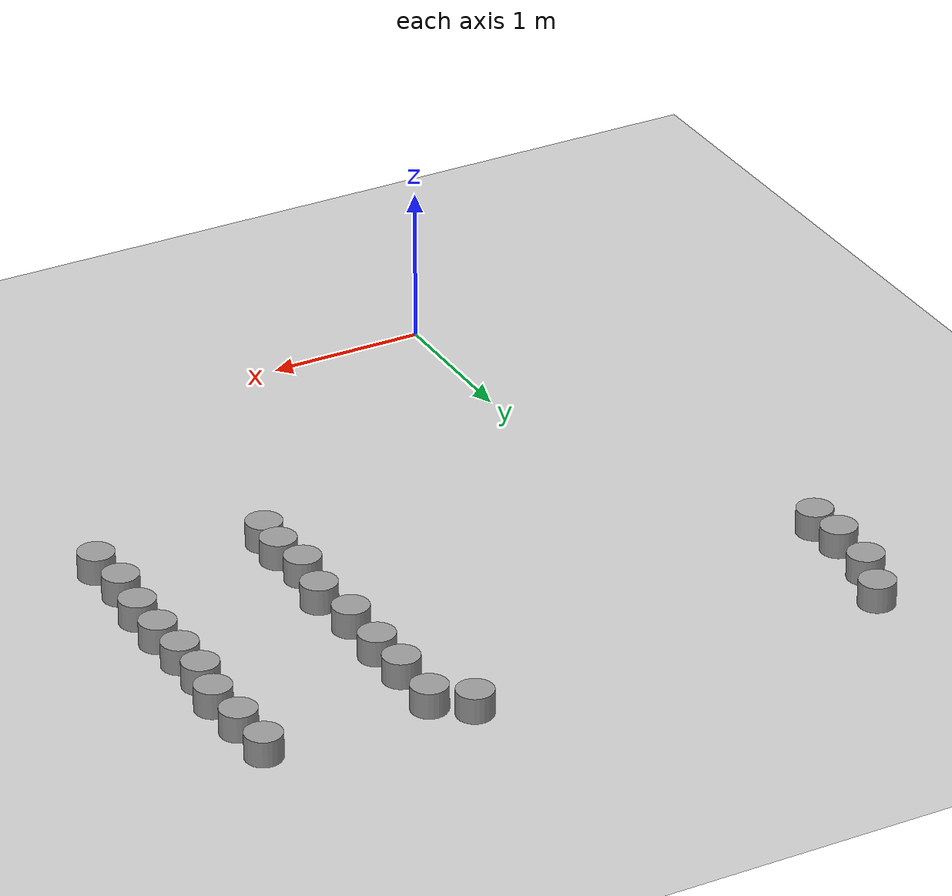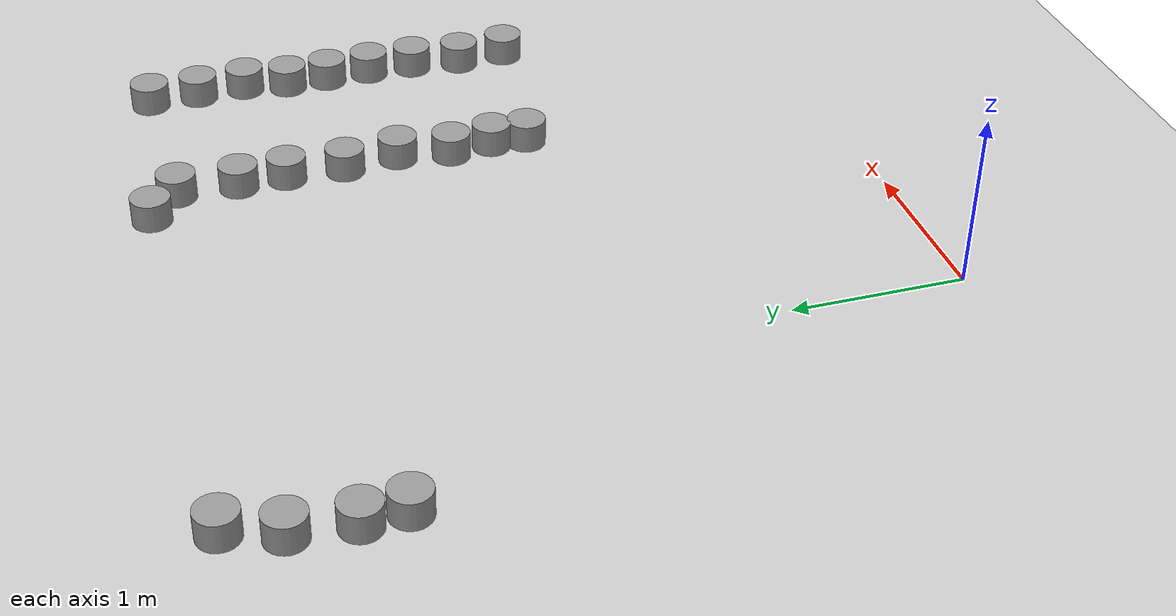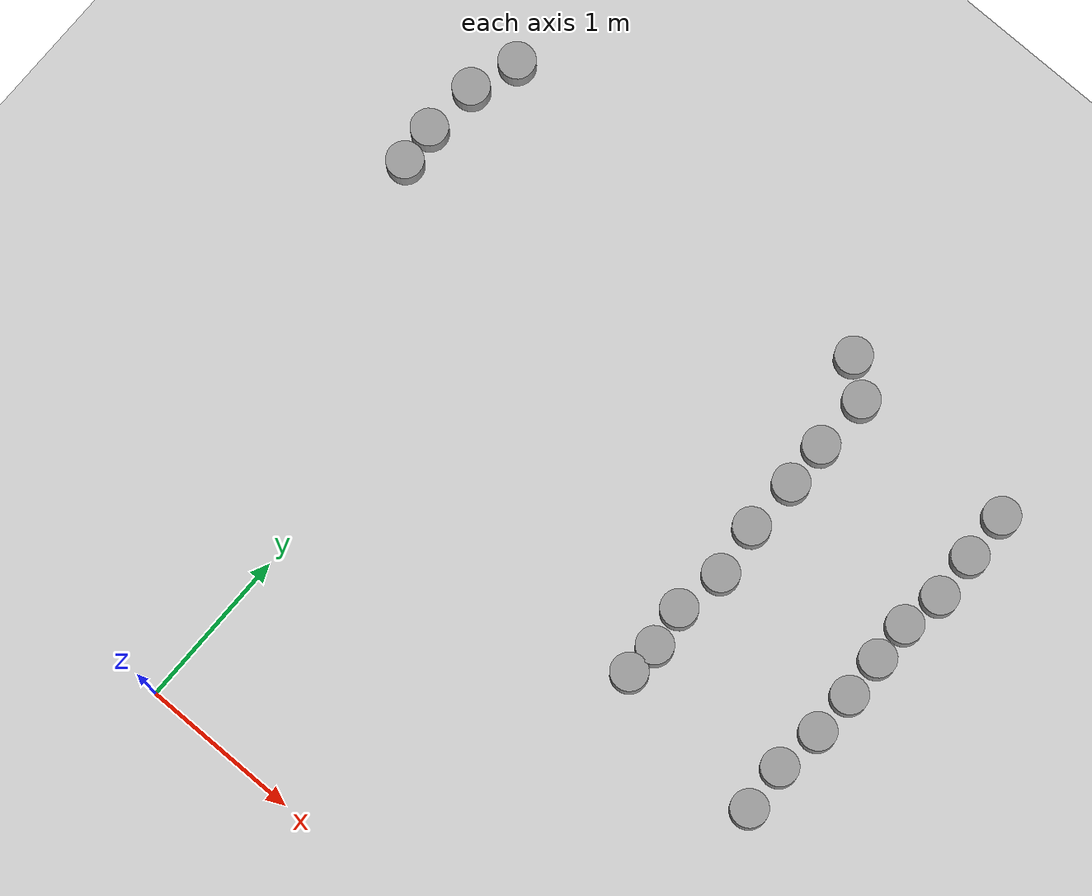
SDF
<sdf version="1.6">
 <world name="default">
  <model name="ground_plane">
   <static>1</static>
   <link name="link">
    <collision name="collision">
     <geometry><plane><normal>0 0 1</normal><size>100 100</size></plane></geometry>
     <surface>
      <contact><collide_bitmask>65535</collide_bitmask></contact>
      <friction><ode><mu>100</mu><mu2>50</mu2></ode></friction>
     </surface>
    </collision>
    <visual name="visual">
     <cast_shadows>0</cast_shadows>
     <geometry><plane><normal>0 0 1</normal><size>100 100</size></plane></geometry>
     <material>
      <script><uri>file://media/materials/scripts/gazebo.material</uri><name>Gazebo/Grey</name></script>
     </material>
    </visual>
   </link>
  </model>
  <model name="pillar_clone_16">
   <link name="link_0">
    <inertial>
     <mass>0.0172437</mass>
     <inertia>
      <ixx>0.000207925</ixx>
      <ixy>0</ixy>
      <ixz>0</ixz>
      <iyy>0.000207925</iyy>
      <iyz>0</iyz>
      <izz>0.000114861</izz>
     </inertia>
    </inertial>
    <pose>2e-06 -0 0 0 -0 0</pose>
    <visual name="visual">
     <geometry><cylinder><radius>0.115422</radius><length>0.32362</length></cylinder></geometry>
     <material>
      <lighting>1</lighting>
      <script><uri>file://media/materials/scripts/gazebo.material</uri><name>Gazebo/Grey</name></script>
      <shader type="vertex"><normal_map>__default__</normal_map></shader>
     </material>
    </visual>
    <collision name="collision">
     <geometry><cylinder><radius>0.115422</radius><length>0.32362</length></cylinder></geometry>
     <surface>
      <friction>
       <ode><mu>1</mu><mu2>1</mu2><fdir1>0 0 0</fdir1><slip1>0</slip1><slip2>0</slip2></ode>
       <torsional>
        <coefficient>1</coefficient>
        <patch_radius>0</patch_radius>
        <surface_radius>0</surface_radius>
        <use_patch_radius>1</use_patch_radius>
        <ode><slip>0</slip></ode>
       </torsional>
      </friction>
      <bounce><restitution_coefficient>0</restitution_coefficient><threshold>1e+06</threshold></bounce>
      <contact>
       <collide_without_contact>0</collide_without_contact>
       <collide_without_contact_bitmask>1</collide_without_contact_bitmask>
       <collide_bitmask>1</collide_bitmask>
       <ode>
        <soft_cfm>0</soft_cfm>
        <soft_erp>0.2</soft_erp>
        <kp>1e+13</kp>
        <kd>1</kd>
        <max_vel>0.01</max_vel>
        <min_depth>0</min_depth>
       </ode>
       <bullet>
        <split_impulse>1</split_impulse>
        <split_impulse_penetration_threshold>-0.01</split_impulse_penetration_threshold>
        <soft_cfm>0</soft_cfm>
        <soft_erp>0.2</soft_erp>
        <kp>1e+13</kp>
        <kd>1</kd>
       </bullet>
      </contact>
     </surface>
    </collision>
   </link>
   <static>1</static>
   <pose>3.07066 3.97139 0 0 -0 0</pose>
  </model>
  <model name="pillar_clone_17">
   <link name="link_0">
    <inertial>
     <mass>0.0172437</mass>
     <inertia>
      <ixx>0.000207925</ixx>
      <ixy>0</ixy>
      <ixz>0</ixz>
      <iyy>0.000207925</iyy>
      <iyz>0</iyz>
      <izz>0.000114861</izz>
     </inertia>
    </inertial>
    <pose>2e-06 -0 0 0 -0 0</pose>
    <visual name="visual">
     <geometry><cylinder><radius>0.115422</radius><length>0.32362</length></cylinder></geometry>
     <material>
      <lighting>1</lighting>
      <script><uri>file://media/materials/scripts/gazebo.material</uri><name>Gazebo/Grey</name></script>
      <shader type="vertex"><normal_map>__default__</normal_map></shader>
     </material>
    </visual>
    <collision name="collision">
     <geometry><cylinder><radius>0.115422</radius><length>0.32362</length></cylinder></geometry>
     <surface>
      <friction>
       <ode><mu>1</mu><mu2>1</mu2><fdir1>0 0 0</fdir1><slip1>0</slip1><slip2>0</slip2></ode>
       <torsional>
        <coefficient>1</coefficient>
        <patch_radius>0</patch_radius>
        <surface_radius>0</surface_radius>
        <use_patch_radius>1</use_patch_radius>
        <ode><slip>0</slip></ode>
       </torsional>
      </friction>
      <bounce><restitution_coefficient>0</restitution_coefficient><threshold>1e+06</threshold></bounce>
      <contact>
       <collide_without_contact>0</collide_without_contact>
       <collide_without_contact_bitmask>1</collide_without_contact_bitmask>
       <collide_bitmask>1</collide_bitmask>
       <ode>
        <soft_cfm>0</soft_cfm>
        <soft_erp>0.2</soft_erp>
        <kp>1e+13</kp>
        <kd>1</kd>
        <max_vel>0.01</max_vel>
        <min_depth>0</min_depth>
       </ode>
       <bullet>
        <split_impulse>1</split_impulse>
        <split_impulse_penetration_threshold>-0.01</split_impulse_penetration_threshold>
        <soft_cfm>0</soft_cfm>
        <soft_erp>0.2</soft_erp>
        <kp>1e+13</kp>
        <kd>1</kd>
       </bullet>
      </contact>
     </surface>
    </collision>
   </link>
   <static>1</static>
   <pose>3.08112 3.67254 0 0 -0 0</pose>
  </model>
  <model name="pillar_clone_18">
   <link name="link_0">
    <inertial>
     <mass>0.0172437</mass>
     <inertia>
      <ixx>0.000207925</ixx>
      <ixy>0</ixy>
      <ixz>0</ixz>
      <iyy>0.000207925</iyy>
      <iyz>0</iyz>
      <izz>0.000114861</izz>
     </inertia>
    </inertial>
    <pose>2e-06 -0 0 0 -0 0</pose>
    <visual name="visual">
     <geometry><cylinder><radius>0.115422</radius><length>0.32362</length></cylinder></geometry>
     <material>
      <lighting>1</lighting>
      <script><uri>file://media/materials/scripts/gazebo.material</uri><name>Gazebo/Grey</name></script>
      <shader type="vertex"><normal_map>__default__</normal_map></shader>
     </material>
    </visual>
    <collision name="collision">
     <geometry><cylinder><radius>0.115422</radius><length>0.32362</length></cylinder></geometry>
     <surface>
      <friction>
       <ode><mu>1</mu><mu2>1</mu2><fdir1>0 0 0</fdir1><slip1>0</slip1><slip2>0</slip2></ode>
       <torsional>
        <coefficient>1</coefficient>
        <patch_radius>0</patch_radius>
        <surface_radius>0</surface_radius>
        <use_patch_radius>1</use_patch_radius>
        <ode><slip>0</slip></ode>
       </torsional>
      </friction>
      <bounce><restitution_coefficient>0</restitution_coefficient><threshold>1e+06</threshold></bounce>
      <contact>
       <collide_without_contact>0</collide_without_contact>
       <collide_without_contact_bitmask>1</collide_without_contact_bitmask>
       <collide_bitmask>1</collide_bitmask>
       <ode>
        <soft_cfm>0</soft_cfm>
        <soft_erp>0.2</soft_erp>
        <kp>1e+13</kp>
        <kd>1</kd>
        <max_vel>0.01</max_vel>
        <min_depth>0</min_depth>
       </ode>
       <bullet>
        <split_impulse>1</split_impulse>
        <split_impulse_penetration_threshold>-0.01</split_impulse_penetration_threshold>
        <soft_cfm>0</soft_cfm>
        <soft_erp>0.2</soft_erp>
        <kp>1e+13</kp>
        <kd>1</kd>
       </bullet>
      </contact>
     </surface>
    </collision>
   </link>
   <static>1</static>
   <pose>3.09722 3.38086 0 0 -0 0</pose>
  </model>
  <model name="pillar_clone_19">
   <link name="link_0">
    <inertial>
     <mass>0.0172437</mass>
     <inertia>
      <ixx>0.000207925</ixx>
      <ixy>0</ixy>
      <ixz>0</ixz>
      <iyy>0.000207925</iyy>
      <iyz>0</iyz>
      <izz>0.000114861</izz>
     </inertia>
    </inertial>
    <pose>2e-06 -0 0 0 -0 0</pose>
    <visual name="visual">
     <geometry><cylinder><radius>0.115422</radius><length>0.32362</length></cylinder></geometry>
     <material>
      <lighting>1</lighting>
      <script><uri>file://media/materials/scripts/gazebo.material</uri><name>Gazebo/Grey</name></script>
      <shader type="vertex"><normal_map>__default__</normal_map></shader>
     </material>
    </visual>
    <collision name="collision">
     <geometry><cylinder><radius>0.115422</radius><length>0.32362</length></cylinder></geometry>
     <surface>
      <friction>
       <ode><mu>1</mu><mu2>1</mu2><fdir1>0 0 0</fdir1><slip1>0</slip1><slip2>0</slip2></ode>
       <torsional>
        <coefficient>1</coefficient>
        <patch_radius>0</patch_radius>
        <surface_radius>0</surface_radius>
        <use_patch_radius>1</use_patch_radius>
        <ode><slip>0</slip></ode>
       </torsional>
      </friction>
      <bounce><restitution_coefficient>0</restitution_coefficient><threshold>1e+06</threshold></bounce>
      <contact>
       <collide_without_contact>0</collide_without_contact>
       <collide_without_contact_bitmask>1</collide_without_contact_bitmask>
       <collide_bitmask>1</collide_bitmask>
       <ode>
        <soft_cfm>0</soft_cfm>
        <soft_erp>0.2</soft_erp>
        <kp>1e+13</kp>
        <kd>1</kd>
        <max_vel>0.01</max_vel>
        <min_depth>0</min_depth>
       </ode>
       <bullet>
        <split_impulse>1</split_impulse>
        <split_impulse_penetration_threshold>-0.01</split_impulse_penetration_threshold>
        <soft_cfm>0</soft_cfm>
        <soft_erp>0.2</soft_erp>
        <kp>1e+13</kp>
        <kd>1</kd>
       </bullet>
      </contact>
     </surface>
    </collision>
   </link>
   <static>1</static>
   <pose>3.05002 3.1194 0 0 -0 0</pose>
  </model>
  <model name="pillar_clone_20">
   <link name="link_0">
    <inertial>
     <mass>0.0172437</mass>
     <inertia>
      <ixx>0.000207925</ixx>
      <ixy>0</ixy>
      <ixz>0</ixz>
      <iyy>0.000207925</iyy>
      <iyz>0</iyz>
      <izz>0.000114861</izz>
     </inertia>
    </inertial>
    <pose>2e-06 -0 0 0 -0 0</pose>
    <visual name="visual">
     <geometry><cylinder><radius>0.115422</radius><length>0.32362</length></cylinder></geometry>
     <material>
      <lighting>1</lighting>
      <script><uri>file://media/materials/scripts/gazebo.material</uri><name>Gazebo/Grey</name></script>
      <shader type="vertex"><normal_map>__default__</normal_map></shader>
     </material>
    </visual>
    <collision name="collision">
     <geometry><cylinder><radius>0.115422</radius><length>0.32362</length></cylinder></geometry>
     <surface>
      <friction>
       <ode><mu>1</mu><mu2>1</mu2><fdir1>0 0 0</fdir1><slip1>0</slip1><slip2>0</slip2></ode>
       <torsional>
        <coefficient>1</coefficient>
        <patch_radius>0</patch_radius>
        <surface_radius>0</surface_radius>
        <use_patch_radius>1</use_patch_radius>
        <ode><slip>0</slip></ode>
       </torsional>
      </friction>
      <bounce><restitution_coefficient>0</restitution_coefficient><threshold>1e+06</threshold></bounce>
      <contact>
       <collide_without_contact>0</collide_without_contact>
       <collide_without_contact_bitmask>1</collide_without_contact_bitmask>
       <collide_bitmask>1</collide_bitmask>
       <ode>
        <soft_cfm>0</soft_cfm>
        <soft_erp>0.2</soft_erp>
        <kp>1e+13</kp>
        <kd>1</kd>
        <max_vel>0.01</max_vel>
        <min_depth>0</min_depth>
       </ode>
       <bullet>
        <split_impulse>1</split_impulse>
        <split_impulse_penetration_threshold>-0.01</split_impulse_penetration_threshold>
        <soft_cfm>0</soft_cfm>
        <soft_erp>0.2</soft_erp>
        <kp>1e+13</kp>
        <kd>1</kd>
       </bullet>
      </contact>
     </surface>
    </collision>
   </link>
   <static>1</static>
   <pose>3.05791 2.86537 0 0 -0 0</pose>
  </model>
  <model name="pillar_clone_21">
   <link name="link_0">
    <inertial>
     <mass>0.0172437</mass>
     <inertia>
      <ixx>0.000207925</ixx>
      <ixy>0</ixy>
      <ixz>0</ixz>
      <iyy>0.000207925</iyy>
      <iyz>0</iyz>
      <izz>0.000114861</izz>
     </inertia>
    </inertial>
    <pose>2e-06 -0 0 0 -0 0</pose>
    <visual name="visual">
     <geometry><cylinder><radius>0.115422</radius><length>0.32362</length></cylinder></geometry>
     <material>
      <lighting>1</lighting>
      <script><uri>file://media/materials/scripts/gazebo.material</uri><name>Gazebo/Grey</name></script>
      <shader type="vertex"><normal_map>__default__</normal_map></shader>
     </material>
    </visual>
    <collision name="collision">
     <geometry><cylinder><radius>0.115422</radius><length>0.32362</length></cylinder></geometry>
     <surface>
      <friction>
       <ode><mu>1</mu><mu2>1</mu2><fdir1>0 0 0</fdir1><slip1>0</slip1><slip2>0</slip2></ode>
       <torsional>
        <coefficient>1</coefficient>
        <patch_radius>0</patch_radius>
        <surface_radius>0</surface_radius>
        <use_patch_radius>1</use_patch_radius>
        <ode><slip>0</slip></ode>
       </torsional>
      </friction>
      <bounce><restitution_coefficient>0</restitution_coefficient><threshold>1e+06</threshold></bounce>
      <contact>
       <collide_without_contact>0</collide_without_contact>
       <collide_without_contact_bitmask>1</collide_without_contact_bitmask>
       <collide_bitmask>1</collide_bitmask>
       <ode>
        <soft_cfm>0</soft_cfm>
        <soft_erp>0.2</soft_erp>
        <kp>1e+13</kp>
        <kd>1</kd>
        <max_vel>0.01</max_vel>
        <min_depth>0</min_depth>
       </ode>
       <bullet>
        <split_impulse>1</split_impulse>
        <split_impulse_penetration_threshold>-0.01</split_impulse_penetration_threshold>
        <soft_cfm>0</soft_cfm>
        <soft_erp>0.2</soft_erp>
        <kp>1e+13</kp>
        <kd>1</kd>
       </bullet>
      </contact>
     </surface>
    </collision>
   </link>
   <static>1</static>
   <pose>3.06979 2.59644 0 0 -0 0</pose>
  </model>
  <model name="pillar_clone_22">
   <link name="link_0">
    <inertial>
     <mass>0.0172437</mass>
     <inertia>
      <ixx>0.000207925</ixx>
      <ixy>0</ixy>
      <ixz>0</ixz>
      <iyy>0.000207925</iyy>
      <iyz>0</iyz>
      <izz>0.000114861</izz>
     </inertia>
    </inertial>
    <pose>2e-06 -0 0 0 -0 0</pose>
    <visual name="visual">
     <geometry><cylinder><radius>0.115422</radius><length>0.32362</length></cylinder></geometry>
     <material>
      <lighting>1</lighting>
      <script><uri>file://media/materials/scripts/gazebo.material</uri><name>Gazebo/Grey</name></script>
      <shader type="vertex"><normal_map>__default__</normal_map></shader>
     </material>
    </visual>
    <collision name="collision">
     <geometry><cylinder><radius>0.115422</radius><length>0.32362</length></cylinder></geometry>
     <surface>
      <friction>
       <ode><mu>1</mu><mu2>1</mu2><fdir1>0 0 0</fdir1><slip1>0</slip1><slip2>0</slip2></ode>
       <torsional>
        <coefficient>1</coefficient>
        <patch_radius>0</patch_radius>
        <surface_radius>0</surface_radius>
        <use_patch_radius>1</use_patch_radius>
        <ode><slip>0</slip></ode>
       </torsional>
      </friction>
      <bounce><restitution_coefficient>0</restitution_coefficient><threshold>1e+06</threshold></bounce>
      <contact>
       <collide_without_contact>0</collide_without_contact>
       <collide_without_contact_bitmask>1</collide_without_contact_bitmask>
       <collide_bitmask>1</collide_bitmask>
       <ode>
        <soft_cfm>0</soft_cfm>
        <soft_erp>0.2</soft_erp>
        <kp>1e+13</kp>
        <kd>1</kd>
        <max_vel>0.01</max_vel>
        <min_depth>0</min_depth>
       </ode>
       <bullet>
        <split_impulse>1</split_impulse>
        <split_impulse_penetration_threshold>-0.01</split_impulse_penetration_threshold>
        <soft_cfm>0</soft_cfm>
        <soft_erp>0.2</soft_erp>
        <kp>1e+13</kp>
        <kd>1</kd>
       </bullet>
      </contact>
     </surface>
    </collision>
   </link>
   <static>1</static>
   <pose>3.06649 2.31725 0 0 -0 0</pose>
  </model>
  <model name="pillar_clone_23">
   <link name="link_0">
    <inertial>
     <mass>0.0172437</mass>
     <inertia>
      <ixx>0.000207925</ixx>
      <ixy>0</ixy>
      <ixz>0</ixz>
      <iyy>0.000207925</iyy>
      <iyz>0</iyz>
      <izz>0.000114861</izz>
     </inertia>
    </inertial>
    <pose>2e-06 -0 0 0 -0 0</pose>
    <visual name="visual">
     <geometry><cylinder><radius>0.115422</radius><length>0.32362</length></cylinder></geometry>
     <material>
      <lighting>1</lighting>
      <script><uri>file://media/materials/scripts/gazebo.material</uri><name>Gazebo/Grey</name></script>
      <shader type="vertex"><normal_map>__default__</normal_map></shader>
     </material>
    </visual>
    <collision name="collision">
     <geometry><cylinder><radius>0.115422</radius><length>0.32362</length></cylinder></geometry>
     <surface>
      <friction>
       <ode><mu>1</mu><mu2>1</mu2><fdir1>0 0 0</fdir1><slip1>0</slip1><slip2>0</slip2></ode>
       <torsional>
        <coefficient>1</coefficient>
        <patch_radius>0</patch_radius>
        <surface_radius>0</surface_radius>
        <use_patch_radius>1</use_patch_radius>
        <ode><slip>0</slip></ode>
       </torsional>
      </friction>
      <bounce><restitution_coefficient>0</restitution_coefficient><threshold>1e+06</threshold></bounce>
      <contact>
       <collide_without_contact>0</collide_without_contact>
       <collide_without_contact_bitmask>1</collide_without_contact_bitmask>
       <collide_bitmask>1</collide_bitmask>
       <ode>
        <soft_cfm>0</soft_cfm>
        <soft_erp>0.2</soft_erp>
        <kp>1e+13</kp>
        <kd>1</kd>
        <max_vel>0.01</max_vel>
        <min_depth>0</min_depth>
       </ode>
       <bullet>
        <split_impulse>1</split_impulse>
        <split_impulse_penetration_threshold>-0.01</split_impulse_penetration_threshold>
        <soft_cfm>0</soft_cfm>
        <soft_erp>0.2</soft_erp>
        <kp>1e+13</kp>
        <kd>1</kd>
       </bullet>
      </contact>
     </surface>
    </collision>
   </link>
   <static>1</static>
   <pose>3.03205 2.01728 0 0 -0 0</pose>
  </model>
  <model name="pillar_clone_24">
   <link name="link_0">
    <inertial>
     <mass>0.0172437</mass>
     <inertia>
      <ixx>0.000207925</ixx>
      <ixy>0</ixy>
      <ixz>0</ixz>
      <iyy>0.000207925</iyy>
      <iyz>0</iyz>
      <izz>0.000114861</izz>
     </inertia>
    </inertial>
    <pose>2e-06 -0 0 0 -0 0</pose>
    <visual name="visual">
     <geometry><cylinder><radius>0.115422</radius><length>0.32362</length></cylinder></geometry>
     <material>
      <lighting>1</lighting>
      <script><uri>file://media/materials/scripts/gazebo.material</uri><name>Gazebo/Grey</name></script>
      <shader type="vertex"><normal_map>__default__</normal_map></shader>
     </material>
    </visual>
    <collision name="collision">
     <geometry><cylinder><radius>0.115422</radius><length>0.32362</length></cylinder></geometry>
     <surface>
      <friction>
       <ode><mu>1</mu><mu2>1</mu2><fdir1>0 0 0</fdir1><slip1>0</slip1><slip2>0</slip2></ode>
       <torsional>
        <coefficient>1</coefficient>
        <patch_radius>0</patch_radius>
        <surface_radius>0</surface_radius>
        <use_patch_radius>1</use_patch_radius>
        <ode><slip>0</slip></ode>
       </torsional>
      </friction>
      <bounce><restitution_coefficient>0</restitution_coefficient><threshold>1e+06</threshold></bounce>
      <contact>
       <collide_without_contact>0</collide_without_contact>
       <collide_without_contact_bitmask>1</collide_without_contact_bitmask>
       <collide_bitmask>1</collide_bitmask>
       <ode>
        <soft_cfm>0</soft_cfm>
        <soft_erp>0.2</soft_erp>
        <kp>1e+13</kp>
        <kd>1</kd>
        <max_vel>0.01</max_vel>
        <min_depth>0</min_depth>
       </ode>
       <bullet>
        <split_impulse>1</split_impulse>
        <split_impulse_penetration_threshold>-0.01</split_impulse_penetration_threshold>
        <soft_cfm>0</soft_cfm>
        <soft_erp>0.2</soft_erp>
        <kp>1e+13</kp>
        <kd>1</kd>
       </bullet>
      </contact>
     </surface>
    </collision>
   </link>
   <static>1</static>
   <pose>3.05252 1.72172 0 0 -0 0</pose>
  </model>
  <model name="pillar_clone_36_clone_22">
   <link name="link_0">
    <inertial>
     <mass>0.0172437</mass>
     <inertia>
      <ixx>0.000207925</ixx>
      <ixy>0</ixy>
      <ixz>0</ixz>
      <iyy>0.000207925</iyy>
      <iyz>0</iyz>
      <izz>0.000114861</izz>
     </inertia>
    </inertial>
    <pose>2e-06 -0 0 0 -0 0</pose>
    <visual name="visual">
     <geometry><cylinder><radius>0.115422</radius><length>0.32362</length></cylinder></geometry>
     <material>
      <lighting>1</lighting>
      <script><uri>file://media/materials/scripts/gazebo.material</uri><name>Gazebo/Grey</name></script>
      <shader type="vertex"><normal_map>__default__</normal_map></shader>
     </material>
    </visual>
    <collision name="collision">
     <geometry><cylinder><radius>0.115422</radius><length>0.32362</length></cylinder></geometry>
     <surface>
      <friction>
       <ode><mu>1</mu><mu2>1</mu2><fdir1>0 0 0</fdir1><slip1>0</slip1><slip2>0</slip2></ode>
       <torsional>
        <coefficient>1</coefficient>
        <patch_radius>0</patch_radius>
        <surface_radius>0</surface_radius>
        <use_patch_radius>1</use_patch_radius>
        <ode><slip>0</slip></ode>
       </torsional>
      </friction>
      <bounce><restitution_coefficient>0</restitution_coefficient><threshold>1e+06</threshold></bounce>
      <contact>
       <collide_without_contact>0</collide_without_contact>
       <collide_without_contact_bitmask>1</collide_without_contact_bitmask>
       <collide_bitmask>1</collide_bitmask>
       <ode>
        <soft_cfm>0</soft_cfm>
        <soft_erp>0.2</soft_erp>
        <kp>1e+13</kp>
        <kd>1</kd>
        <max_vel>0.01</max_vel>
        <min_depth>0</min_depth>
       </ode>
       <bullet>
        <split_impulse>1</split_impulse>
        <split_impulse_penetration_threshold>-0.01</split_impulse_penetration_threshold>
        <soft_cfm>0</soft_cfm>
        <soft_erp>0.2</soft_erp>
        <kp>1e+13</kp>
        <kd>1</kd>
       </bullet>
      </contact>
     </surface>
    </collision>
   </link>
   <static>1</static>
   <pose>2.0057 2.9809 0 0 -0 0</pose>
  </model>
  <model name="pillar_clone_36_clone_23">
   <link name="link_0">
    <inertial>
     <mass>0.0172437</mass>
     <inertia>
      <ixx>0.000207925</ixx>
      <ixy>0</ixy>
      <ixz>0</ixz>
      <iyy>0.000207925</iyy>
      <iyz>0</iyz>
      <izz>0.000114861</izz>
     </inertia>
    </inertial>
    <pose>2e-06 -0 0 0 -0 0</pose>
    <visual name="visual">
     <geometry><cylinder><radius>0.115422</radius><length>0.32362</length></cylinder></geometry>
     <material>
      <lighting>1</lighting>
      <script><uri>file://media/materials/scripts/gazebo.material</uri><name>Gazebo/Grey</name></script>
      <shader type="vertex"><normal_map>__default__</normal_map></shader>
     </material>
    </visual>
    <collision name="collision">
     <geometry><cylinder><radius>0.115422</radius><length>0.32362</length></cylinder></geometry>
     <surface>
      <friction>
       <ode><mu>1</mu><mu2>1</mu2><fdir1>0 0 0</fdir1><slip1>0</slip1><slip2>0</slip2></ode>
       <torsional>
        <coefficient>1</coefficient>
        <patch_radius>0</patch_radius>
        <surface_radius>0</surface_radius>
        <use_patch_radius>1</use_patch_radius>
        <ode><slip>0</slip></ode>
       </torsional>
      </friction>
      <bounce><restitution_coefficient>0</restitution_coefficient><threshold>1e+06</threshold></bounce>
      <contact>
       <collide_without_contact>0</collide_without_contact>
       <collide_without_contact_bitmask>1</collide_without_contact_bitmask>
       <collide_bitmask>1</collide_bitmask>
       <ode>
        <soft_cfm>0</soft_cfm>
        <soft_erp>0.2</soft_erp>
        <kp>1e+13</kp>
        <kd>1</kd>
        <max_vel>0.01</max_vel>
        <min_depth>0</min_depth>
       </ode>
       <bullet>
        <split_impulse>1</split_impulse>
        <split_impulse_penetration_threshold>-0.01</split_impulse_penetration_threshold>
        <soft_cfm>0</soft_cfm>
        <soft_erp>0.2</soft_erp>
        <kp>1e+13</kp>
        <kd>1</kd>
       </bullet>
      </contact>
     </surface>
    </collision>
   </link>
   <static>1</static>
   <pose>2.04688 2.65464 0 0 -0 0</pose>
  </model>
  <model name="pillar_clone_36_clone_25">
   <link name="link_0">
    <inertial>
     <mass>0.0172437</mass>
     <inertia>
      <ixx>0.000207925</ixx>
      <ixy>0</ixy>
      <ixz>0</ixz>
      <iyy>0.000207925</iyy>
      <iyz>0</iyz>
      <izz>0.000114861</izz>
     </inertia>
    </inertial>
    <pose>2e-06 -0 0 0 -0 0</pose>
    <visual name="visual">
     <geometry><cylinder><radius>0.115422</radius><length>0.32362</length></cylinder></geometry>
     <material>
      <lighting>1</lighting>
      <script><uri>file://media/materials/scripts/gazebo.material</uri><name>Gazebo/Grey</name></script>
      <shader type="vertex"><normal_map>__default__</normal_map></shader>
     </material>
    </visual>
    <collision name="collision">
     <geometry><cylinder><radius>0.115422</radius><length>0.32362</length></cylinder></geometry>
     <surface>
      <friction>
       <ode><mu>1</mu><mu2>1</mu2><fdir1>0 0 0</fdir1><slip1>0</slip1><slip2>0</slip2></ode>
       <torsional>
        <coefficient>1</coefficient>
        <patch_radius>0</patch_radius>
        <surface_radius>0</surface_radius>
        <use_patch_radius>1</use_patch_radius>
        <ode><slip>0</slip></ode>
       </torsional>
      </friction>
      <bounce><restitution_coefficient>0</restitution_coefficient><threshold>1e+06</threshold></bounce>
      <contact>
       <collide_without_contact>0</collide_without_contact>
       <collide_without_contact_bitmask>1</collide_without_contact_bitmask>
       <collide_bitmask>1</collide_bitmask>
       <ode>
        <soft_cfm>0</soft_cfm>
        <soft_erp>0.2</soft_erp>
        <kp>1e+13</kp>
        <kd>1</kd>
        <max_vel>0.01</max_vel>
        <min_depth>0</min_depth>
       </ode>
       <bullet>
        <split_impulse>1</split_impulse>
        <split_impulse_penetration_threshold>-0.01</split_impulse_penetration_threshold>
        <soft_cfm>0</soft_cfm>
        <soft_erp>0.2</soft_erp>
        <kp>1e+13</kp>
        <kd>1</kd>
       </bullet>
      </contact>
     </surface>
    </collision>
   </link>
   <static>1</static>
   <pose>-0.947481 3.90406 0 0 -0 0</pose>
  </model>
  <model name="pillar_clone_36_clone_26">
   <link name="link_0">
    <inertial>
     <mass>0.0172437</mass>
     <inertia>
      <ixx>0.000207925</ixx>
      <ixy>0</ixy>
      <ixz>0</ixz>
      <iyy>0.000207925</iyy>
      <iyz>0</iyz>
      <izz>0.000114861</izz>
     </inertia>
    </inertial>
    <pose>2e-06 -0 0 0 -0 0</pose>
    <visual name="visual">
     <geometry><cylinder><radius>0.115422</radius><length>0.32362</length></cylinder></geometry>
     <material>
      <lighting>1</lighting>
      <script><uri>file://media/materials/scripts/gazebo.material</uri><name>Gazebo/Grey</name></script>
      <shader type="vertex"><normal_map>__default__</normal_map></shader>
     </material>
    </visual>
    <collision name="collision">
     <geometry><cylinder><radius>0.115422</radius><length>0.32362</length></cylinder></geometry>
     <surface>
      <friction>
       <ode><mu>1</mu><mu2>1</mu2><fdir1>0 0 0</fdir1><slip1>0</slip1><slip2>0</slip2></ode>
       <torsional>
        <coefficient>1</coefficient>
        <patch_radius>0</patch_radius>
        <surface_radius>0</surface_radius>
        <use_patch_radius>1</use_patch_radius>
        <ode><slip>0</slip></ode>
       </torsional>
      </friction>
      <bounce><restitution_coefficient>0</restitution_coefficient><threshold>1e+06</threshold></bounce>
      <contact>
       <collide_without_contact>0</collide_without_contact>
       <collide_without_contact_bitmask>1</collide_without_contact_bitmask>
       <collide_bitmask>1</collide_bitmask>
       <ode>
        <soft_cfm>0</soft_cfm>
        <soft_erp>0.2</soft_erp>
        <kp>1e+13</kp>
        <kd>1</kd>
        <max_vel>0.01</max_vel>
        <min_depth>0</min_depth>
       </ode>
       <bullet>
        <split_impulse>1</split_impulse>
        <split_impulse_penetration_threshold>-0.01</split_impulse_penetration_threshold>
        <soft_cfm>0</soft_cfm>
        <soft_erp>0.2</soft_erp>
        <kp>1e+13</kp>
        <kd>1</kd>
       </bullet>
      </contact>
     </surface>
    </collision>
   </link>
   <static>1</static>
   <pose>2.01119 3.96673 0 0 -0 0</pose>
  </model>
  <model name="pillar_clone_36_clone_29">
   <link name="link_0">
    <inertial>
     <mass>0.0172437</mass>
     <inertia>
      <ixx>0.000207925</ixx>
      <ixy>0</ixy>
      <ixz>0</ixz>
      <iyy>0.000207925</iyy>
      <iyz>0</iyz>
      <izz>0.000114861</izz>
     </inertia>
    </inertial>
    <pose>2e-06 -0 0 0 -0 0</pose>
    <visual name="visual">
     <geometry><cylinder><radius>0.115422</radius><length>0.32362</length></cylinder></geometry>
     <material>
      <lighting>1</lighting>
      <script><uri>file://media/materials/scripts/gazebo.material</uri><name>Gazebo/Grey</name></script>
      <shader type="vertex"><normal_map>__default__</normal_map></shader>
     </material>
    </visual>
    <collision name="collision">
     <geometry><cylinder><radius>0.115422</radius><length>0.32362</length></cylinder></geometry>
     <surface>
      <friction>
       <ode><mu>1</mu><mu2>1</mu2><fdir1>0 0 0</fdir1><slip1>0</slip1><slip2>0</slip2></ode>
       <torsional>
        <coefficient>1</coefficient>
        <patch_radius>0</patch_radius>
        <surface_radius>0</surface_radius>
        <use_patch_radius>1</use_patch_radius>
        <ode><slip>0</slip></ode>
       </torsional>
      </friction>
      <bounce><restitution_coefficient>0</restitution_coefficient><threshold>1e+06</threshold></bounce>
      <contact>
       <collide_without_contact>0</collide_without_contact>
       <collide_without_contact_bitmask>1</collide_without_contact_bitmask>
       <collide_bitmask>1</collide_bitmask>
       <ode>
        <soft_cfm>0</soft_cfm>
        <soft_erp>0.2</soft_erp>
        <kp>1e+13</kp>
        <kd>1</kd>
        <max_vel>0.01</max_vel>
        <min_depth>0</min_depth>
       </ode>
       <bullet>
        <split_impulse>1</split_impulse>
        <split_impulse_penetration_threshold>-0.01</split_impulse_penetration_threshold>
        <soft_cfm>0</soft_cfm>
        <soft_erp>0.2</soft_erp>
        <kp>1e+13</kp>
        <kd>1</kd>
       </bullet>
      </contact>
     </surface>
    </collision>
   </link>
   <static>1</static>
   <pose>2.00439 3.60918 0 0 -0 0</pose>
  </model>
  <model name="pillar_clone_36_clone_30">
   <link name="link_0">
    <inertial>
     <mass>0.0172437</mass>
     <inertia>
      <ixx>0.000207925</ixx>
      <ixy>0</ixy>
      <ixz>0</ixz>
      <iyy>0.000207925</iyy>
      <iyz>0</iyz>
      <izz>0.000114861</izz>
     </inertia>
    </inertial>
    <pose>2e-06 -0 0 0 -0 0</pose>
    <visual name="visual">
     <geometry><cylinder><radius>0.115422</radius><length>0.32362</length></cylinder></geometry>
     <material>
      <lighting>1</lighting>
      <script><uri>file://media/materials/scripts/gazebo.material</uri><name>Gazebo/Grey</name></script>
      <shader type="vertex"><normal_map>__default__</normal_map></shader>
     </material>
    </visual>
    <collision name="collision">
     <geometry><cylinder><radius>0.115422</radius><length>0.32362</length></cylinder></geometry>
     <surface>
      <friction>
       <ode><mu>1</mu><mu2>1</mu2><fdir1>0 0 0</fdir1><slip1>0</slip1><slip2>0</slip2></ode>
       <torsional>
        <coefficient>1</coefficient>
        <patch_radius>0</patch_radius>
        <surface_radius>0</surface_radius>
        <use_patch_radius>1</use_patch_radius>
        <ode><slip>0</slip></ode>
       </torsional>
      </friction>
      <bounce><restitution_coefficient>0</restitution_coefficient><threshold>1e+06</threshold></bounce>
      <contact>
       <collide_without_contact>0</collide_without_contact>
       <collide_without_contact_bitmask>1</collide_without_contact_bitmask>
       <collide_bitmask>1</collide_bitmask>
       <ode>
        <soft_cfm>0</soft_cfm>
        <soft_erp>0.2</soft_erp>
        <kp>1e+13</kp>
        <kd>1</kd>
        <max_vel>0.01</max_vel>
        <min_depth>0</min_depth>
       </ode>
       <bullet>
        <split_impulse>1</split_impulse>
        <split_impulse_penetration_threshold>-0.01</split_impulse_penetration_threshold>
        <soft_cfm>0</soft_cfm>
        <soft_erp>0.2</soft_erp>
        <kp>1e+13</kp>
        <kd>1</kd>
       </bullet>
      </contact>
     </surface>
    </collision>
   </link>
   <static>1</static>
   <pose>2.0142 3.3257 0 0 -0 0</pose>
  </model>
  <model name="pillar_clone_36_clone_31">
   <link name="link_0">
    <inertial>
     <mass>0.0172437</mass>
     <inertia>
      <ixx>0.000207925</ixx>
      <ixy>0</ixy>
      <ixz>0</ixz>
      <iyy>0.000207925</iyy>
      <iyz>0</iyz>
      <izz>0.000114861</izz>
     </inertia>
    </inertial>
    <pose>2e-06 -0 0 0 -0 0</pose>
    <visual name="visual">
     <geometry><cylinder><radius>0.115422</radius><length>0.32362</length></cylinder></geometry>
     <material>
      <lighting>1</lighting>
      <script><uri>file://media/materials/scripts/gazebo.material</uri><name>Gazebo/Grey</name></script>
      <shader type="vertex"><normal_map>__default__</normal_map></shader>
     </material>
    </visual>
    <collision name="collision">
     <geometry><cylinder><radius>0.115422</radius><length>0.32362</length></cylinder></geometry>
     <surface>
      <friction>
       <ode><mu>1</mu><mu2>1</mu2><fdir1>0 0 0</fdir1><slip1>0</slip1><slip2>0</slip2></ode>
       <torsional>
        <coefficient>1</coefficient>
        <patch_radius>0</patch_radius>
        <surface_radius>0</surface_radius>
        <use_patch_radius>1</use_patch_radius>
        <ode><slip>0</slip></ode>
       </torsional>
      </friction>
      <bounce><restitution_coefficient>0</restitution_coefficient><threshold>1e+06</threshold></bounce>
      <contact>
       <collide_without_contact>0</collide_without_contact>
       <collide_without_contact_bitmask>1</collide_without_contact_bitmask>
       <collide_bitmask>1</collide_bitmask>
       <ode>
        <soft_cfm>0</soft_cfm>
        <soft_erp>0.2</soft_erp>
        <kp>1e+13</kp>
        <kd>1</kd>
        <max_vel>0.01</max_vel>
        <min_depth>0</min_depth>
       </ode>
       <bullet>
        <split_impulse>1</split_impulse>
        <split_impulse_penetration_threshold>-0.01</split_impulse_penetration_threshold>
        <soft_cfm>0</soft_cfm>
        <soft_erp>0.2</soft_erp>
        <kp>1e+13</kp>
        <kd>1</kd>
       </bullet>
      </contact>
     </surface>
    </collision>
   </link>
   <static>1</static>
   <pose>1.99595 2.34139 0 0 -0 0</pose>
  </model>
  <model name="pillar_clone_36_clone_32">
   <link name="link_0">
    <inertial>
     <mass>0.0172437</mass>
     <inertia>
      <ixx>0.000207925</ixx>
      <ixy>0</ixy>
      <ixz>0</ixz>
      <iyy>0.000207925</iyy>
      <iyz>0</iyz>
      <izz>0.000114861</izz>
     </inertia>
    </inertial>
    <pose>2e-06 -0 0 0 -0 0</pose>
    <visual name="visual">
     <geometry><cylinder><radius>0.115422</radius><length>0.32362</length></cylinder></geometry>
     <material>
      <lighting>1</lighting>
      <script><uri>file://media/materials/scripts/gazebo.material</uri><name>Gazebo/Grey</name></script>
      <shader type="vertex"><normal_map>__default__</normal_map></shader>
     </material>
    </visual>
    <collision name="collision">
     <geometry><cylinder><radius>0.115422</radius><length>0.32362</length></cylinder></geometry>
     <surface>
      <friction>
       <ode><mu>1</mu><mu2>1</mu2><fdir1>0 0 0</fdir1><slip1>0</slip1><slip2>0</slip2></ode>
       <torsional>
        <coefficient>1</coefficient>
        <patch_radius>0</patch_radius>
        <surface_radius>0</surface_radius>
        <use_patch_radius>1</use_patch_radius>
        <ode><slip>0</slip></ode>
       </torsional>
      </friction>
      <bounce><restitution_coefficient>0</restitution_coefficient><threshold>1e+06</threshold></bounce>
      <contact>
       <collide_without_contact>0</collide_without_contact>
       <collide_without_contact_bitmask>1</collide_without_contact_bitmask>
       <collide_bitmask>1</collide_bitmask>
       <ode>
        <soft_cfm>0</soft_cfm>
        <soft_erp>0.2</soft_erp>
        <kp>1e+13</kp>
        <kd>1</kd>
        <max_vel>0.01</max_vel>
        <min_depth>0</min_depth>
       </ode>
       <bullet>
        <split_impulse>1</split_impulse>
        <split_impulse_penetration_threshold>-0.01</split_impulse_penetration_threshold>
        <soft_cfm>0</soft_cfm>
        <soft_erp>0.2</soft_erp>
        <kp>1e+13</kp>
        <kd>1</kd>
       </bullet>
      </contact>
     </surface>
    </collision>
   </link>
   <static>1</static>
   <pose>2.02834 2.08547 0 0 -0 0</pose>
  </model>
  <model name="pillar_clone_36_clone_33">
   <link name="link_0">
    <inertial>
     <mass>0.0172437</mass>
     <inertia>
      <ixx>0.000207925</ixx>
      <ixy>0</ixy>
      <ixz>0</ixz>
      <iyy>0.000207925</iyy>
      <iyz>0</iyz>
      <izz>0.000114861</izz>
     </inertia>
    </inertial>
    <pose>2e-06 -0 0 0 -0 0</pose>
    <visual name="visual">
     <geometry><cylinder><radius>0.115422</radius><length>0.32362</length></cylinder></geometry>
     <material>
      <lighting>1</lighting>
      <script><uri>file://media/materials/scripts/gazebo.material</uri><name>Gazebo/Grey</name></script>
      <shader type="vertex"><normal_map>__default__</normal_map></shader>
     </material>
    </visual>
    <collision name="collision">
     <geometry><cylinder><radius>0.115422</radius><length>0.32362</length></cylinder></geometry>
     <surface>
      <friction>
       <ode><mu>1</mu><mu2>1</mu2><fdir1>0 0 0</fdir1><slip1>0</slip1><slip2>0</slip2></ode>
       <torsional>
        <coefficient>1</coefficient>
        <patch_radius>0</patch_radius>
        <surface_radius>0</surface_radius>
        <use_patch_radius>1</use_patch_radius>
        <ode><slip>0</slip></ode>
       </torsional>
      </friction>
      <bounce><restitution_coefficient>0</restitution_coefficient><threshold>1e+06</threshold></bounce>
      <contact>
       <collide_without_contact>0</collide_without_contact>
       <collide_without_contact_bitmask>1</collide_without_contact_bitmask>
       <collide_bitmask>1</collide_bitmask>
       <ode>
        <soft_cfm>0</soft_cfm>
        <soft_erp>0.2</soft_erp>
        <kp>1e+13</kp>
        <kd>1</kd>
        <max_vel>0.01</max_vel>
        <min_depth>0</min_depth>
       </ode>
       <bullet>
        <split_impulse>1</split_impulse>
        <split_impulse_penetration_threshold>-0.01</split_impulse_penetration_threshold>
        <soft_cfm>0</soft_cfm>
        <soft_erp>0.2</soft_erp>
        <kp>1e+13</kp>
        <kd>1</kd>
       </bullet>
      </contact>
     </surface>
    </collision>
   </link>
   <static>1</static>
   <pose>2.01657 1.87203 0 0 -0 0</pose>
  </model>
  <model name="pillar_clone_36_clone_52">
   <link name="link_0">
    <inertial>
     <mass>0.0172437</mass>
     <inertia>
      <ixx>0.000207925</ixx>
      <ixy>0</ixy>
      <ixz>0</ixz>
      <iyy>0.000207925</iyy>
      <iyz>0</iyz>
      <izz>0.000114861</izz>
     </inertia>
    </inertial>
    <pose>2e-06 -0 0 0 -0 0</pose>
    <visual name="visual">
     <geometry><cylinder><radius>0.115422</radius><length>0.32362</length></cylinder></geometry>
     <material>
      <lighting>1</lighting>
      <script><uri>file://media/materials/scripts/gazebo.material</uri><name>Gazebo/Grey</name></script>
      <shader type="vertex"><normal_map>__default__</normal_map></shader>
     </material>
    </visual>
    <collision name="collision">
     <geometry><cylinder><radius>0.115422</radius><length>0.32362</length></cylinder></geometry>
     <surface>
      <friction>
       <ode><mu>1</mu><mu2>1</mu2><fdir1>0 0 0</fdir1><slip1>0</slip1><slip2>0</slip2></ode>
       <torsional>
        <coefficient>1</coefficient>
        <patch_radius>0</patch_radius>
        <surface_radius>0</surface_radius>
        <use_patch_radius>1</use_patch_radius>
        <ode><slip>0</slip></ode>
       </torsional>
      </friction>
      <bounce><restitution_coefficient>0</restitution_coefficient><threshold>1e+06</threshold></bounce>
      <contact>
       <collide_without_contact>0</collide_without_contact>
       <collide_without_contact_bitmask>1</collide_without_contact_bitmask>
       <collide_bitmask>1</collide_bitmask>
       <ode>
        <soft_cfm>0</soft_cfm>
        <soft_erp>0.2</soft_erp>
        <kp>1e+13</kp>
        <kd>1</kd>
        <max_vel>0.01</max_vel>
        <min_depth>0</min_depth>
       </ode>
       <bullet>
        <split_impulse>1</split_impulse>
        <split_impulse_penetration_threshold>-0.01</split_impulse_penetration_threshold>
        <soft_cfm>0</soft_cfm>
        <soft_erp>0.2</soft_erp>
        <kp>1e+13</kp>
        <kd>1</kd>
       </bullet>
      </contact>
     </surface>
    </collision>
   </link>
   <static>1</static>
   <pose>-0.973178 3.55765 0 0 -0 0</pose>
  </model>
  <model name="pillar_clone_36_clone_54">
   <link name="link_0">
    <inertial>
     <mass>0.0172437</mass>
     <inertia>
      <ixx>0.000207925</ixx>
      <ixy>0</ixy>
      <ixz>0</ixz>
      <iyy>0.000207925</iyy>
      <iyz>0</iyz>
      <izz>0.000114861</izz>
     </inertia>
    </inertial>
    <pose>2e-06 -0 0 0 -0 0</pose>
    <visual name="visual">
     <geometry><cylinder><radius>0.115422</radius><length>0.32362</length></cylinder></geometry>
     <material>
      <lighting>1</lighting>
      <script><uri>file://media/materials/scripts/gazebo.material</uri><name>Gazebo/Grey</name></script>
      <shader type="vertex"><normal_map>__default__</normal_map></shader>
     </material>
    </visual>
    <collision name="collision">
     <geometry><cylinder><radius>0.115422</radius><length>0.32362</length></cylinder></geometry>
     <surface>
      <friction>
       <ode><mu>1</mu><mu2>1</mu2><fdir1>0 0 0</fdir1><slip1>0</slip1><slip2>0</slip2></ode>
       <torsional>
        <coefficient>1</coefficient>
        <patch_radius>0</patch_radius>
        <surface_radius>0</surface_radius>
        <use_patch_radius>1</use_patch_radius>
        <ode><slip>0</slip></ode>
       </torsional>
      </friction>
      <bounce><restitution_coefficient>0</restitution_coefficient><threshold>1e+06</threshold></bounce>
      <contact>
       <collide_without_contact>0</collide_without_contact>
       <collide_without_contact_bitmask>1</collide_without_contact_bitmask>
       <collide_bitmask>1</collide_bitmask>
       <ode>
        <soft_cfm>0</soft_cfm>
        <soft_erp>0.2</soft_erp>
        <kp>1e+13</kp>
        <kd>1</kd>
        <max_vel>0.01</max_vel>
        <min_depth>0</min_depth>
       </ode>
       <bullet>
        <split_impulse>1</split_impulse>
        <split_impulse_penetration_threshold>-0.01</split_impulse_penetration_threshold>
        <soft_cfm>0</soft_cfm>
        <soft_erp>0.2</soft_erp>
        <kp>1e+13</kp>
        <kd>1</kd>
       </bullet>
      </contact>
     </surface>
    </collision>
   </link>
   <static>1</static>
   <pose>-0.953617 3.31438 0 0 -0 0</pose>
  </model>
  <model name="pillar_clone_36_clone_67">
   <link name="link_0">
    <inertial>
     <mass>0.0172437</mass>
     <inertia>
      <ixx>0.000207925</ixx>
      <ixy>0</ixy>
      <ixz>0</ixz>
      <iyy>0.000207925</iyy>
      <iyz>0</iyz>
      <izz>0.000114861</izz>
     </inertia>
    </inertial>
    <pose>2e-06 -0 0 0 -0 0</pose>
    <visual name="visual">
     <geometry><cylinder><radius>0.115422</radius><length>0.32362</length></cylinder></geometry>
     <material>
      <lighting>1</lighting>
      <script><uri>file://media/materials/scripts/gazebo.material</uri><name>Gazebo/Grey</name></script>
      <shader type="vertex"><normal_map>__default__</normal_map></shader>
     </material>
    </visual>
    <collision name="collision">
     <geometry><cylinder><radius>0.115422</radius><length>0.32362</length></cylinder></geometry>
     <surface>
      <friction>
       <ode><mu>1</mu><mu2>1</mu2><fdir1>0 0 0</fdir1><slip1>0</slip1><slip2>0</slip2></ode>
       <torsional>
        <coefficient>1</coefficient>
        <patch_radius>0</patch_radius>
        <surface_radius>0</surface_radius>
        <use_patch_radius>1</use_patch_radius>
        <ode><slip>0</slip></ode>
       </torsional>
      </friction>
      <bounce><restitution_coefficient>0</restitution_coefficient><threshold>1e+06</threshold></bounce>
      <contact>
       <collide_without_contact>0</collide_without_contact>
       <collide_without_contact_bitmask>1</collide_without_contact_bitmask>
       <collide_bitmask>1</collide_bitmask>
       <ode>
        <soft_cfm>0</soft_cfm>
        <soft_erp>0.2</soft_erp>
        <kp>1e+13</kp>
        <kd>1</kd>
        <max_vel>0.01</max_vel>
        <min_depth>0</min_depth>
       </ode>
       <bullet>
        <split_impulse>1</split_impulse>
        <split_impulse_penetration_threshold>-0.01</split_impulse_penetration_threshold>
        <soft_cfm>0</soft_cfm>
        <soft_erp>0.2</soft_erp>
        <kp>1e+13</kp>
        <kd>1</kd>
       </bullet>
      </contact>
     </surface>
    </collision>
   </link>
   <static>1</static>
   <pose>-0.844249 4.20018 0 0 -0 0</pose>
  </model>
  <model name="pillar_clone_36_clone_74">
   <link name="link_0">
    <inertial>
     <mass>0.0172437</mass>
     <inertia>
      <ixx>0.000207925</ixx>
      <ixy>0</ixy>
      <ixz>0</ixz>
      <iyy>0.000207925</iyy>
      <iyz>0</iyz>
      <izz>0.000114861</izz>
     </inertia>
    </inertial>
    <pose>2e-06 -0 0 0 -0 0</pose>
    <visual name="visual">
     <geometry><cylinder><radius>0.115422</radius><length>0.32362</length></cylinder></geometry>
     <material>
      <lighting>1</lighting>
      <script><uri>file://media/materials/scripts/gazebo.material</uri><name>Gazebo/Grey</name></script>
      <shader type="vertex"><normal_map>__default__</normal_map></shader>
     </material>
    </visual>
    <collision name="collision">
     <geometry><cylinder><radius>0.115422</radius><length>0.32362</length></cylinder></geometry>
     <surface>
      <friction>
       <ode><mu>1</mu><mu2>1</mu2><fdir1>0 0 0</fdir1><slip1>0</slip1><slip2>0</slip2></ode>
       <torsional>
        <coefficient>1</coefficient>
        <patch_radius>0</patch_radius>
        <surface_radius>0</surface_radius>
        <use_patch_radius>1</use_patch_radius>
        <ode><slip>0</slip></ode>
       </torsional>
      </friction>
      <bounce><restitution_coefficient>0</restitution_coefficient><threshold>1e+06</threshold></bounce>
      <contact>
       <collide_without_contact>0</collide_without_contact>
       <collide_without_contact_bitmask>1</collide_without_contact_bitmask>
       <collide_bitmask>1</collide_bitmask>
       <ode>
        <soft_cfm>0</soft_cfm>
        <soft_erp>0.2</soft_erp>
        <kp>1e+13</kp>
        <kd>1</kd>
        <max_vel>0.01</max_vel>
        <min_depth>0</min_depth>
       </ode>
       <bullet>
        <split_impulse>1</split_impulse>
        <split_impulse_penetration_threshold>-0.01</split_impulse_penetration_threshold>
        <soft_cfm>0</soft_cfm>
        <soft_erp>0.2</soft_erp>
        <kp>1e+13</kp>
        <kd>1</kd>
       </bullet>
      </contact>
     </surface>
    </collision>
   </link>
   <static>1</static>
   <pose>1.80794 4.13857 0 0 -0 0</pose>
  </model>
 </world>
</sdf>
